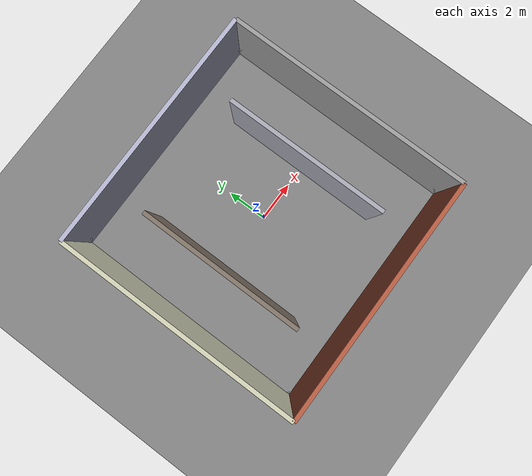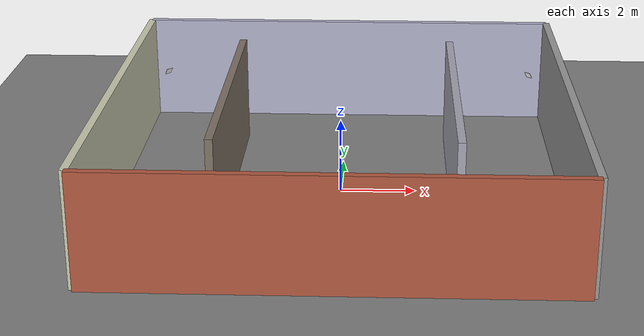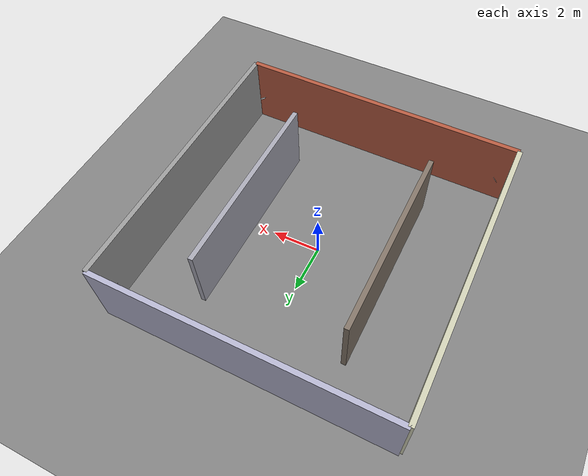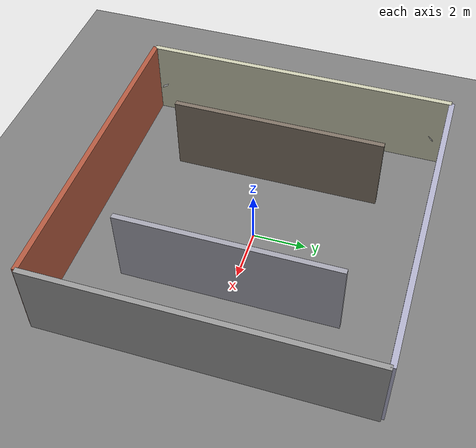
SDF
<?xml version="1.0"?>
<sdf version="1.7">
  <world name="warehouse_world">

    <!-- Physics settings -->
    <physics name="default_physics" type="ode">
      <max_step_size>0.001</max_step_size>
      <real_time_factor>1.0</real_time_factor>
      <real_time_update_rate>1000</real_time_update_rate>
    </physics>

    <!-- Essential Gazebo Plugins -->
    <plugin filename="gz-sim-physics-system" name="gz::sim::systems::Physics"></plugin>
    <plugin filename="gz-sim-sensors-system" name="gz::sim::systems::Sensors">
      <render_engine>ogre2</render_engine>
    </plugin>
    <plugin filename="gz-sim-scene-broadcaster-system" name="gz::sim::systems::SceneBroadcaster"></plugin>
    <plugin filename="gz-sim-user-commands-system" name="gz::sim::systems::UserCommands"></plugin>

    <!-- Scene settings - warehouse atmosphere -->
    <scene>
      <ambient>0.4 0.4 0.45 1.0</ambient>
      <background>0.2 0.2 0.25 1.0</background>
      <shadows>true</shadows>
    </scene>

    <!-- Industrial warehouse lighting -->
    <light type="directional" name="sun">
      <cast_shadows>true</cast_shadows>
      <pose>5 5 15 0 0 0</pose>
      <diffuse>0.7 0.7 0.7 1</diffuse>
      <specular>0.3 0.3 0.3 1</specular>
      <direction>-0.3 -0.3 -0.9</direction>
    </light>

    <!-- Additional spot lights for warehouse effect -->
    <light type="point" name="warehouse_light_1">
      <pose>3 3 3 0 0 0</pose>
      <diffuse>0.6 0.6 0.5 1</diffuse>
      <specular>0.2 0.2 0.2 1</specular>
      <attenuation>
        <range>15</range>
        <linear>0.1</linear>
        <quadratic>0.01</quadratic>
      </attenuation>
    </light>

    <light type="point" name="warehouse_light_2">
      <pose>-3 -3 3 0 0 0</pose>
      <diffuse>0.6 0.6 0.5 1</diffuse>
      <specular>0.2 0.2 0.2 1</specular>
      <attenuation>
        <range>15</range>
        <linear>0.1</linear>
        <quadratic>0.01</quadratic>
      </attenuation>
    </light>

    <!-- Ground Plane - concrete texture -->
    <model name="ground_plane">
      <static>true</static>
      <link name="link">
        <collision name="collision">
          <geometry>
            <plane>
              <normal>0 0 1</normal>
              <size>100 100</size>
            </plane>
          </geometry>
        </collision>
        <visual name="visual">
          <geometry>
            <plane>
              <normal>0 0 1</normal>
              <size>100 100</size>
            </plane>
          </geometry>
          <material>
            <ambient>0.4 0.4 0.4 1</ambient>
            <diffuse>0.5 0.5 0.5 1</diffuse>
            <specular>0.2 0.2 0.2 1</specular>
            <pbr>
              <metal>
                <roughness>0.8</roughness>
                <metalness>0.1</metalness>
              </metal>
            </pbr>
          </material>
        </visual>
      </link>
    </model>

    <!-- Warehouse Layout: L-shaped corridor with storage areas -->

    <!-- North Wall - corrugated metal texture -->
    <model name="wall_north">
      <static>true</static>
      <pose>0 6 1.5 0 0 0</pose>
      <link name="link">
        <collision name="collision">
          <geometry>
            <box>
              <size>12 0.2 3</size>
            </box>
          </geometry>
        </collision>
        <visual name="visual">
          <geometry>
            <box>
              <size>12 0.2 3</size>
            </box>
          </geometry>
          <material>
            <ambient>0.6 0.6 0.7 1</ambient>
            <diffuse>0.7 0.7 0.8 1</diffuse>
            <specular>0.4 0.4 0.4 1</specular>
            <pbr>
              <metal>
                <roughness>0.3</roughness>
                <metalness>0.6</metalness>
              </metal>
            </pbr>
          </material>
        </visual>
      </link>
    </model>

    <!-- South Wall - brick pattern -->
    <model name="wall_south">
      <static>true</static>
      <pose>0 -6 1.5 0 0 0</pose>
      <link name="link">
        <collision name="collision">
          <geometry>
            <box>
              <size>12 0.2 3</size>
            </box>
          </geometry>
        </collision>
        <visual name="visual">
          <geometry>
            <box>
              <size>12 0.2 3</size>
            </box>
          </geometry>
          <material>
            <ambient>0.6 0.3 0.2 1</ambient>
            <diffuse>0.7 0.35 0.25 1</diffuse>
            <specular>0.1 0.1 0.1 1</specular>
            <pbr>
              <metal>
                <roughness>0.9</roughness>
                <metalness>0.0</metalness>
              </metal>
            </pbr>
          </material>
        </visual>
      </link>
    </model>

    <!-- East Wall - concrete panels -->
    <model name="wall_east">
      <static>true</static>
      <pose>6 0 1.5 0 0 0</pose>
      <link name="link">
        <collision name="collision">
          <geometry>
            <box>
              <size>0.2 12 3</size>
            </box>
          </geometry>
        </collision>
        <visual name="visual">
          <geometry>
            <box>
              <size>0.2 12 3</size>
            </box>
          </geometry>
          <material>
            <ambient>0.5 0.5 0.5 1</ambient>
            <diffuse>0.6 0.6 0.6 1</diffuse>
            <specular>0.2 0.2 0.2 1</specular>
            <pbr>
              <metal>
                <roughness>0.7</roughness>
                <metalness>0.1</metalness>
              </metal>
            </pbr>
          </material>
        </visual>
      </link>
    </model>

    <!-- West Wall - painted plaster -->
    <model name="wall_west">
      <static>true</static>
      <pose>-6 0 1.5 0 0 0</pose>
      <link name="link">
        <collision name="collision">
          <geometry>
            <box>
              <size>0.2 12 3</size>
            </box>
          </geometry>
        </collision>
        <visual name="visual">
          <geometry>
            <box>
              <size>0.2 12 3</size>
            </box>
          </geometry>
          <material>
            <ambient>0.7 0.7 0.6 1</ambient>
            <diffuse>0.8 0.8 0.7 1</diffuse>
            <specular>0.15 0.15 0.15 1</specular>
            <pbr>
              <metal>
                <roughness>0.85</roughness>
                <metalness>0.05</metalness>
              </metal>
            </pbr>
          </material>
        </visual>
      </link>
    </model>

    <!-- Storage Divider Walls -->
    <model name="divider_1">
      <static>true</static>
      <pose>3 0 1.5 0 0 0</pose>
      <link name="link">
        <collision name="collision">
          <geometry>
            <box>
              <size>0.2 8 3</size>
            </box>
          </geometry>
        </collision>
        <visual name="visual">
          <geometry>
            <box>
              <size>0.2 8 3</size>
            </box>
          </geometry>
          <material>
            <ambient>0.55 0.55 0.6 1</ambient>
            <diffuse>0.65 0.65 0.7 1</diffuse>
            <specular>0.3 0.3 0.3 1</specular>
            <pbr>
              <metal>
                <roughness>0.4</roughness>
                <metalness>0.5</metalness>
              </metal>
            </pbr>
          </material>
        </visual>
      </link>
    </model>

    <model name="divider_2">
      <static>true</static>
      <pose>-3 0 1.5 0 0 0</pose>
      <link name="link">
        <collision name="collision">
          <geometry>
            <box>
              <size>0.2 8 3</size>
            </box>
          </geometry>
        </collision>
        <visual name="visual">
          <geometry>
            <box>
              <size>0.2 8 3</size>
            </box>
          </geometry>
          <material>
            <ambient>0.4 0.35 0.3 1</ambient>
            <diffuse>0.5 0.45 0.4 1</diffuse>
            <specular>0.1 0.1 0.1 1</specular>
            <pbr>
              <metal>
                <roughness>0.8</roughness>
                <metalness>0.1</metalness>
              </metal>
            </pbr>
          </material>
        </visual>
      </link>
    </model>

    <!-- WhyCode Markers at key locations -->
    <include>
      <uri>model://whycode_0</uri>
      <name>marker_0</name>
      <pose>5.5 5.5 1.5 0 0 -2.356</pose>
    </include>

    <include>
      <uri>model://whycode_1</uri>
      <name>marker_1</name>
      <pose>-5.5 5.5 1.5 0 0 2.356</pose>
    </include>

    <include>
      <uri>model://whycode_2</uri>
      <name>marker_2</name>
      <pose>-5.5 -5.5 1.5 0 0 0.785</pose>
    </include>

    <include>
      <uri>model://whycode_3</uri>
      <name>marker_3</name>
      <pose>5.5 -5.5 1.5 0 0 -0.785</pose>
    </include>

  </world>
</sdf>

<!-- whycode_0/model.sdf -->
<sdf version="1.7">
  <model name="WhyCode_0">
    <static>true</static>
    <link name="link">
      <pose>0 0 0 0 2.0944 0</pose>
      <collision name="collision">
        <geometry>
          <box>
            <size>0.2 0.2 0.01</size>
          </box>
        </geometry>
      </collision>
      <visual name="visual">
        <geometry>
          <box>
            <size>0.2 0.2 0.01</size>
          </box>
        </geometry>
        <material>
          <ambient>1 1 1 1</ambient>
          <diffuse>1 1 1 1</diffuse>
          <specular>0 0 0 1</specular>
          <pbr>
            <metal>
              <albedo_map>model://whycode_0/materials/textures/whycode_1.png</albedo_map>
              <roughness>0.5</roughness>
              <metalness>0.0</metalness>
            </metal>
          </pbr>
          <!-- Fallback for Ogre 1.x -->
          <script>
            <uri>model://whycode_0/materials/scripts</uri>
            <uri>model://whycode_0/materials/textures</uri>
            <name>WhyCode_0/Marker</name>
          </script>
        </material>
      </visual>
    </link>
  </model>
</sdf>

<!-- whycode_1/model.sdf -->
<sdf version="1.7">
  <model name="WhyCode_1">
    <static>true</static>
    <link name="link">
      <pose>0 0 0 0 -2.0944 0</pose>
      <collision name="collision">
        <geometry>
          <box>
            <size>0.2 0.2 0.01</size>
          </box>
        </geometry>
      </collision>
      <visual name="visual">
        <geometry>
          <box>
            <size>0.2 0.2 0.01</size>
          </box>
        </geometry>
        <material>
          <ambient>1 1 1 1</ambient>
          <diffuse>1 1 1 1</diffuse>
          <specular>0 0 0 1</specular>
          <pbr>
            <metal>
              <albedo_map>model://whycode_1/materials/textures/whycode_2.png</albedo_map>
              <roughness>0.5</roughness>
              <metalness>0.0</metalness>
            </metal>
          </pbr>
          <!-- Fallback for Ogre 1.x -->
          <script>
            <uri>model://whycode_1/materials/scripts</uri>
            <uri>model://whycode_1/materials/textures</uri>
            <name>WhyCode_1/Marker</name>
          </script>
        </material>
      </visual>
    </link>
  </model>
</sdf>

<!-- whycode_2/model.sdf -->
<sdf version="1.7">
  <model name="WhyCode_2">
    <static>true</static>
    <link name="link">
      <pose>0 0 0 0 2.0944 0</pose>
      <collision name="collision">
        <geometry>
          <box>
            <size>0.2 0.2 0.01</size>
          </box>
        </geometry>
      </collision>
      <visual name="visual">
        <geometry>
          <box>
            <size>0.2 0.2 0.01</size>
          </box>
        </geometry>
        <material>
          <ambient>1 1 1 1</ambient>
          <diffuse>1 1 1 1</diffuse>
          <specular>0 0 0 1</specular>
          <pbr>
            <metal>
              <albedo_map>model://whycode_2/materials/textures/whycode_3.png</albedo_map>
              <roughness>0.5</roughness>
              <metalness>0.0</metalness>
            </metal>
          </pbr>
          <!-- Fallback for Ogre 1.x -->
          <script>
            <uri>model://whycode_2/materials/scripts</uri>
            <uri>model://whycode_2/materials/textures</uri>
            <name>WhyCode_2/Marker</name>
          </script>
        </material>
      </visual>
    </link>
  </model>
</sdf>

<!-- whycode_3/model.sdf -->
<sdf version="1.7">
  <model name="WhyCode_3">
    <static>true</static>
    <link name="link">
      <pose>0 0 0 0 -2.0944 0</pose>
      <collision name="collision">
        <geometry>
          <box>
            <size>0.2 0.2 0.01</size>
          </box>
        </geometry>
      </collision>
      <visual name="visual">
        <geometry>
          <box>
            <size>0.2 0.2 0.01</size>
          </box>
        </geometry>
        <material>
          <ambient>1 1 1 1</ambient>
          <diffuse>1 1 1 1</diffuse>
          <specular>0 0 0 1</specular>
          <pbr>
            <metal>
              <albedo_map>model://whycode_3/materials/textures/whycode_4.png</albedo_map>
              <roughness>0.5</roughness>
              <metalness>0.0</metalness>
            </metal>
          </pbr>
          <!-- Fallback for Ogre 1.x -->
          <script>
            <uri>model://whycode_3/materials/scripts</uri>
            <uri>model://whycode_3/materials/textures</uri>
            <name>WhyCode_3/Marker</name>
          </script>
        </material>
      </visual>
    </link>
  </model>
</sdf>
